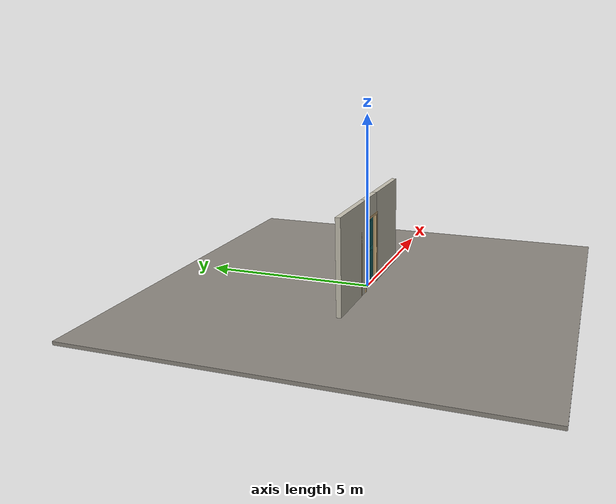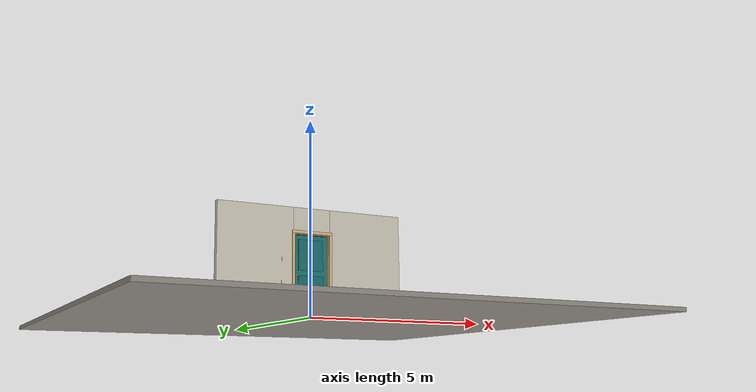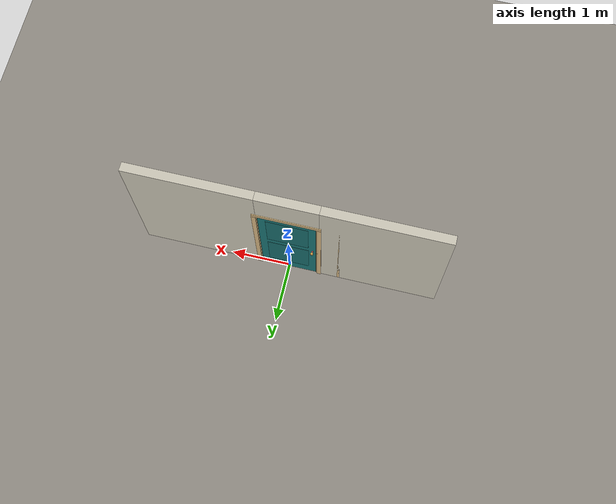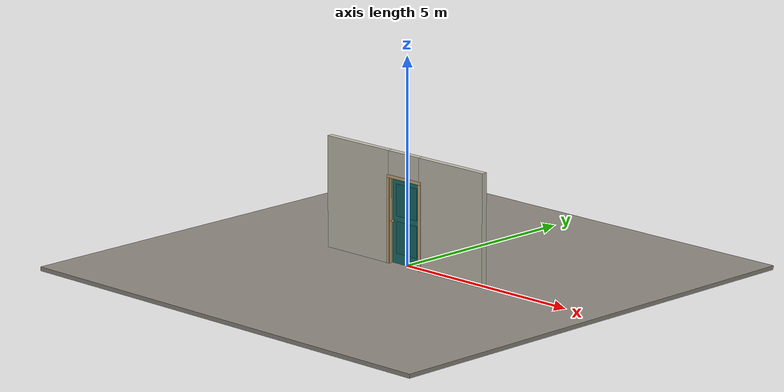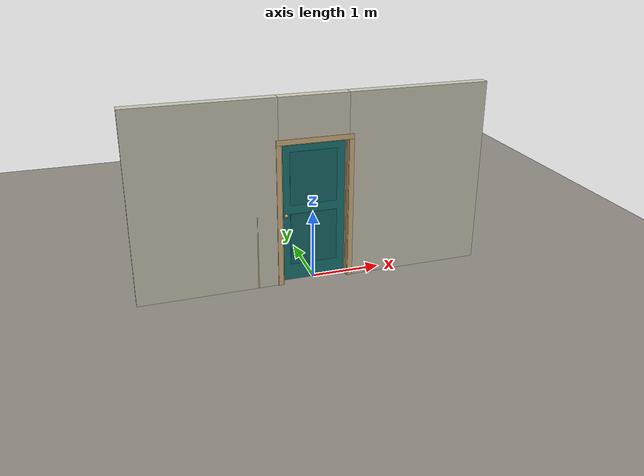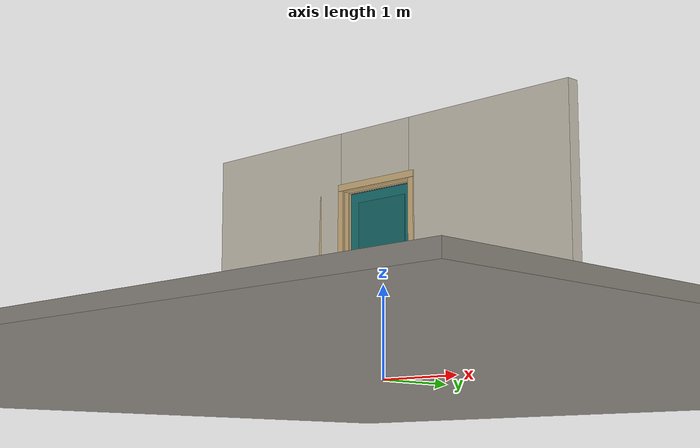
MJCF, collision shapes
<?xml version="1.0" ?>
<mujoco model="db0815_swing_single_full">
  <compiler angle="radian" meshdir="../../hardware" texturedir="../../textures" autolimits="true" inertiafromgeom="false"/>
  <option timestep="0.002" integrator="implicitfast" cone="elliptic" impratio="10" noslip_iterations="3">
    <flag multiccd="enable"/>
  </option>
  <size memory="16M"/>
  <default>
    <geom condim="4" solref="0.005 1" solimp="0.95 0.99 0.001"/>
    <joint solreflimit="0.005 1" solimplimit="0.95 0.99 0.001"/>
    <tendon solreflimit="0.005 1"/>
    <equality solref="0.002 1"/>
  </default>
  <visual>
    <headlight ambient="0.4 0.4 0.4" diffuse="0.7 0.7 0.7" specular="0.2 0.2 0.2"/>
    <quality shadowsize="4096"/>
    <map znear="0.01" zfar="60"/>
  </visual>
  <asset>
    <mesh name="hinge_e22b26c0c1" file="hinge_e22b26c0c1.obj"/>
    <mesh name="hinge_jamb_e1d088f8dc" file="hinge_jamb_e1d088f8dc.obj"/>
    <mesh name="knob_d1888f6f03" file="knob_d1888f6f03.obj"/>
    <mesh name="peephole_f829311a59" file="peephole_f829311a59.obj"/>
    <material name="mat_floor" rgba="0.55 0.53 0.5 1" specular="0.2" shininess="0.15" reflectance="0"/>
    <material name="mat_wall" rgba="0.78 0.76 0.7 1" specular="0.2" shininess="0.1" reflectance="0"/>
    <material name="mat_leaf" rgba="0.1 0.45 0.45 1" specular="0.2" shininess="0.65" reflectance="0"/>
    <material name="mat_leaf_panel" rgba="0.092 0.414 0.414 1" specular="0.2" shininess="0.65" reflectance="0"/>
    <material name="mat_hinge" rgba="0.65 0.66 0.68 1" specular="0.74" shininess="0.5" reflectance="0.36"/>
    <material name="mat_op_brass" rgba="0.85 0.66 0.3 1" specular="0.8" shininess="0.75" reflectance="0.4"/>
    <material name="mat_trim" rgba="0.85 0.66 0.3 1" specular="0.8" shininess="0.75" reflectance="0.4"/>
    <material name="mat_keyway" rgba="0.05 0.05 0.05 1" specular="0.2" shininess="0.5" reflectance="0"/>
    <material name="mat_bolt" rgba="0.75 0.76 0.77 1" specular="0.8" shininess="0.65" reflectance="0.4"/>
    <material name="mat_frame" rgba="0.82 0.7 0.5 1" specular="0.2" shininess="0.45" reflectance="0"/>
    <material name="mat_seal" rgba="0.1 0.1 0.1 1" specular="0.2" shininess="0.1" reflectance="0"/>
    <material name="mat_peephole" rgba="0.85 0.66 0.3 1" specular="0.8" shininess="0.75" reflectance="0.4"/>
    <material name="mat_drip" rgba="0.8 0.81 0.83 1" specular="0.8" shininess="0.6" reflectance="0.4"/>
    <material name="mat_sidelite" rgba="0.85 0.92 0.95 0.25" specular="0.2" shininess="0.95" reflectance="0.1"/>
    <texture name="skybox" type="skybox" builtin="gradient" rgb1="0.6 0.7 0.85" rgb2="0.9 0.92 0.95" width="256" height="256"/>
  </asset>
  <worldbody>
    <light name="sun" pos="1.5 -2.5 4" dir="-0.3 0.5 -0.8" directional="true" diffuse="0.8 0.8 0.8" specular="0.3 0.3 0.3" castshadow="true"/>
    <light name="fill" pos="-1.5 2.5 3" dir="0.3 -0.5 -0.7" directional="true" diffuse="0.35 0.35 0.4" castshadow="false"/>
    <camera name="robot_view" pos="0 -2.585687 1.734312" xyaxes="1 0 0 0 0.26963 0.962964" fovy="52"/>
    <camera name="far_view" pos="0 2.498687 1.734312" xyaxes="-1 0 0 0 -0.26963 0.962964" fovy="52"/>
    <camera name="iso" pos="-1.932062 -2.178937 2.141063" xyaxes="0.741536 -0.670913 0 0.242917 0.268487 0.932151" fovy="46"/>
    <camera name="detail_handle" pos="-0.2215 -0.8685 1.296" xyaxes="0.97561 0.219512 0 -0.070934 0.315262 0.94635" fovy="38"/>
    <geom name="floor" type="box" size="6 6 0.05" pos="0 0 -0.05" material="mat_floor" group="0" contype="1" conaffinity="1" friction="0.8 0.005 0.0001" density="2400"/>
    <geom name="wall_left" type="box" size="0.99525 0.0725 1.35" pos="-1.50475 -0.0435 1.35" material="mat_wall" group="0" contype="1" conaffinity="1" friction="0.6 0.005 0.0001" density="800"/>
    <geom name="wall_right" type="box" size="1.01025 0.0725 1.35" pos="1.48975 -0.0435 1.35" material="mat_wall" group="0" contype="1" conaffinity="1" friction="0.6 0.005 0.0001" density="800"/>
    <geom name="wall_header" type="box" size="0.4945 0.0725 0.303" pos="-0.015 -0.0435 2.397" material="mat_wall" group="0" contype="1" conaffinity="1" friction="0.6 0.005 0.0001" density="800"/>
    <geom name="hinge_0_jamb" type="mesh" mesh="hinge_jamb_e1d088f8dc" pos="0.4575 0.029 0.259" quat="0 0 0 1" material="mat_hinge" group="1" contype="0" conaffinity="0" density="7850"/>
    <geom name="hinge_1_jamb" type="mesh" mesh="hinge_jamb_e1d088f8dc" pos="0.4575 0.029 1.025" quat="0 0 0 1" material="mat_hinge" group="1" contype="0" conaffinity="0" density="7850"/>
    <geom name="hinge_2_jamb" type="mesh" mesh="hinge_jamb_e1d088f8dc" pos="0.4575 0.029 1.861" quat="0 0 0 1" material="mat_hinge" group="1" contype="0" conaffinity="0" density="7850"/>
    <geom name="jamb_hinge" type="box" size="0.0095 0.0725 1.0225" pos="0.47 -0.0435 1.0225" material="mat_frame" group="0" contype="1" conaffinity="1" friction="0.6 0.005 0.0001" density="400"/>
    <geom name="strike_1016_wall_n" type="box" size="0.0245 0.05475 0.015" pos="-0.485 -0.06125 1.016" material="mat_frame" group="0" contype="1" conaffinity="1" friction="0.6 0.005 0.0001" density="400"/>
    <geom name="strike_1016_wall_p" type="box" size="0.0245 0.008 0.015" pos="-0.485 0.0145 1.016" material="mat_frame" group="0" contype="1" conaffinity="1" friction="0.6 0.005 0.0001" density="400"/>
    <geom name="strike_1016_ramp" type="box" size="0.0245 0.016771 0.015" pos="-0.489913 0.026543 1.016" quat="0.973249 0 0 0.229753" material="mat_frame" group="0" contype="1" conaffinity="1" friction="0.12 0.005 0.0001" density="400"/>
    <geom name="strike_1016_back" type="box" size="0.0155 0.0065 0.015" pos="-0.494 0 1.016" material="mat_frame" group="0" contype="1" conaffinity="1" friction="0.6 0.005 0.0001" density="400"/>
    <geom name="jamb_strike_0" type="box" size="0.0245 0.0725 0.5005" pos="-0.485 -0.0435 0.5005" material="mat_frame" group="0" contype="1" conaffinity="1" friction="0.6 0.005 0.0001" density="400"/>
    <geom name="jamb_strike_1" type="box" size="0.0245 0.0725 0.507" pos="-0.485 -0.0435 1.538" material="mat_frame" group="0" contype="1" conaffinity="1" friction="0.6 0.005 0.0001" density="400"/>
    <geom name="jamb_head" type="box" size="0.4945 0.0725 0.0095" pos="-0.015 -0.0435 2.0545" material="mat_frame" group="0" contype="1" conaffinity="1" friction="0.6 0.005 0.0001" density="400"/>
    <geom name="head_stud" type="box" size="0.4945 0.0725 0.015" pos="-0.015 -0.0435 2.079" material="mat_wall" group="0" contype="1" conaffinity="1" friction="0.6 0.005 0.0001" density="500"/>
    <geom name="stop_hinge" type="box" size="0.0055 0.016 1.0225" pos="0.455 -0.0385 1.0225" material="mat_frame" group="0" contype="1" conaffinity="1" friction="0.6 0.005 0.0001" density="400"/>
    <geom name="stop_strike" type="box" size="0.0055 0.016 1.0225" pos="-0.455 -0.0385 1.0225" material="mat_frame" group="0" contype="1" conaffinity="1" friction="0.6 0.005 0.0001" density="400"/>
    <geom name="stop_head" type="box" size="0.4605 0.016 0.0055" pos="0 -0.0385 2.0395" material="mat_frame" group="0" contype="1" conaffinity="1" friction="0.6 0.005 0.0001" density="400"/>
    <geom name="seal_hinge" type="box" size="0.004 0.002 1.0225" pos="0.4575 -0.024 1.0225" material="mat_seal" group="1" contype="0" conaffinity="0" density="1100"/>
    <geom name="seal_strike" type="box" size="0.004 0.002 1.0225" pos="-0.4575 -0.024 1.0225" material="mat_seal" group="1" contype="0" conaffinity="0" density="1100"/>
    <geom name="seal_head" type="box" size="0.4405 0.002 0.008" pos="0 -0.024 2.033" material="mat_seal" group="1" contype="0" conaffinity="0" density="1100"/>
    <geom name="casing_l_n" type="box" size="0.035 0.008 1.032" pos="-0.5095 -0.124 1.0225" material="mat_frame" group="2" contype="0" conaffinity="0" density="400"/>
    <geom name="casing_r_n" type="box" size="0.035 0.008 1.032" pos="0.5095 -0.124 1.0225" material="mat_frame" group="2" contype="0" conaffinity="0" density="400"/>
    <geom name="casing_h_n" type="box" size="0.5445 0.008 0.035" pos="0 -0.124 2.094" material="mat_frame" group="2" contype="0" conaffinity="0" density="400"/>
    <geom name="casing_l_p" type="box" size="0.035 0.008 1.032" pos="-0.5095 0.037 1.0225" material="mat_frame" group="2" contype="0" conaffinity="0" density="400"/>
    <geom name="casing_r_p" type="box" size="0.035 0.008 1.032" pos="0.5095 0.037 1.0225" material="mat_frame" group="2" contype="0" conaffinity="0" density="400"/>
    <geom name="casing_h_p" type="box" size="0.5445 0.008 0.035" pos="0 0.037 2.094" material="mat_frame" group="2" contype="0" conaffinity="0" density="400"/>
    <geom name="weather_drip_cap" type="box" size="0.5105 0.03 0.008" pos="0 -0.03 2.09" material="mat_drip" group="2" contype="0" conaffinity="0" density="2700"/>
    <geom name="weather_drip_cap_bracket" type="box" size="0.15315 0.015 0.005" pos="0 0.0145 2.09" material="mat_drip" group="2" contype="0" conaffinity="0" density="7850"/>
    <geom name="sidelite_glass" type="box" size="0.15 0.003 0.9725" pos="-0.6705 0 1.0225" material="mat_sidelite" group="0" contype="1" conaffinity="1" friction="0.6 0.005 0.0001" density="2500"/>
    <geom name="sidelite_frame" type="box" size="0.02 0.0725 1.0225" pos="-0.8405 -0.0435 1.0225" material="mat_frame" group="0" contype="1" conaffinity="1" friction="0.6 0.005 0.0001" density="600"/>
    <site name="approach_point" pos="0 -1.5 0" quat="1 0 0 0" size="0.05" rgba="0.2 0.9 0.2 0.5" group="4"/>
    <site name="goal_point" pos="0 1.5 0" quat="1 0 0 0" size="0.05" rgba="0.2 0.9 0.2 0.5" group="4"/>
    <site name="door_plane_center" pos="0 0 1.0225" quat="1 0 0 0" size="0.02" rgba="0.2 0.9 0.2 0.5" group="4"/>
    <body name="leaf" pos="0.4605 0 0">
      <inertial pos="-0.445037 0.00057 1.02625" mass="22.407064" quat="0.499417 0.501201 -0.498797 0.500581" diaginertia="1.662596844 7.770054611 9.424849835"/>
      <joint name="leaf_hinge" type="hinge" axis="0 0 -1" pos="-0.003 0.029 0" limited="true" range="0 2.356194" solreflimit="0.02 1" damping="0.30611" frictionloss="0.780347" armature="0.02"/>
      <geom name="leaf_slab" type="box" size="0.457 0.022 1.016" pos="-0.46 0 1.025" material="mat_leaf" group="0" contype="1" conaffinity="1" friction="0.4 0.005 0.0001" density="1"/>
      <geom name="leaf_panel_0_n" type="box" size="0.33646 0.003 0.38422" pos="-0.46 -0.025 0.63674" material="mat_leaf_panel" group="1" contype="0" conaffinity="0" density="1"/>
      <geom name="leaf_panel_0_p" type="box" size="0.33646 0.003 0.38422" pos="-0.46 0.025 0.63674" material="mat_leaf_panel" group="1" contype="0" conaffinity="0" density="1"/>
      <geom name="leaf_panel_1_n" type="box" size="0.33646 0.003 0.38422" pos="-0.46 -0.025 1.53518" material="mat_leaf_panel" group="1" contype="0" conaffinity="0" density="1"/>
      <geom name="leaf_panel_1_p" type="box" size="0.33646 0.003 0.38422" pos="-0.46 0.025 1.53518" material="mat_leaf_panel" group="1" contype="0" conaffinity="0" density="1"/>
      <geom name="hinge_0" type="mesh" mesh="hinge_e22b26c0c1" pos="-0.003 0.029 0.259" quat="0 0 0 1" material="mat_hinge" group="1" contype="0" conaffinity="0" density="7850"/>
      <geom name="hinge_1" type="mesh" mesh="hinge_e22b26c0c1" pos="-0.003 0.029 1.025" quat="0 0 0 1" material="mat_hinge" group="1" contype="0" conaffinity="0" density="7850"/>
      <geom name="hinge_2" type="mesh" mesh="hinge_e22b26c0c1" pos="-0.003 0.029 1.861" quat="0 0 0 1" material="mat_hinge" group="1" contype="0" conaffinity="0" density="7850"/>
      <geom name="leaf_latch_bolt_faceplate" type="box" size="0.0006 0.011 0.025" pos="-0.9164 0 1.016" material="mat_bolt" group="1" contype="0" conaffinity="0" density="8500"/>
      <geom name="peephole" type="mesh" mesh="peephole_f829311a59" pos="-0.46 -0.022 1.509" quat="0 0 -0.707107 0.707107" material="mat_peephole" group="2" contype="0" conaffinity="0" density="8500"/>
      <site name="leaf_edge_mid" pos="-0.917 0 1.016" quat="1 0 0 0" size="0.02" rgba="0.2 0.9 0.2 0.5" group="4"/>
      <body name="leaf_handle" pos="-0.862 0 1.016">
        <inertial pos="0 -0.000049 0" mass="1.16269" quat="0.5 0.5 0.5 0.5" diaginertia="0.000312763 0.00435664 0.004356644"/>
        <joint name="leaf_handle_hinge" type="hinge" axis="0 1 0" limited="true" range="0 0.87" damping="0.143616" frictionloss="0.038" stiffness="0.5" springref="-0.5" armature="0.01"/>
        <geom name="leaf_handle_spindle" type="cylinder" size="0.006 0.03" pos="0 0 0" quat="0.707107 -0.707107 0 0" material="mat_op_brass" group="1" contype="0" conaffinity="0" density="7850"/>
        <geom name="leaf_handle_knob_n" type="mesh" mesh="knob_d1888f6f03" pos="0 -0.022 0" quat="0 0 -0.707107 0.707107" material="mat_op_brass" group="1" contype="0" conaffinity="0" density="3000"/>
        <geom name="leaf_handle_knob_col_n" type="sphere" size="0.0243" pos="0 -0.0685 0" material="mat_op_brass" group="0" contype="1" conaffinity="1" friction="0.9 0.01 0.0001" density="3000"/>
        <geom name="leaf_handle_knob_neck_n" type="cylinder" size="0.011 0.012" pos="0 -0.034 0" quat="0.707107 -0.707107 0 0" material="mat_op_brass" group="3" contype="1" conaffinity="1" rgba="0.8 0.3 0.3 0.25" friction="0.6 0.005 0.0001" density="3000"/>
        <geom name="leaf_handle_turn_button_n" type="cylinder" size="0.005 0.005" pos="0 -0.0941 0" quat="0.707107 -0.707107 0 0" material="mat_trim" group="1" contype="0" conaffinity="0" density="7100"/>
        <geom name="leaf_handle_knob_p" type="mesh" mesh="knob_d1888f6f03" pos="0 0.022 0" quat="0 0 0.707107 0.707107" material="mat_op_brass" group="1" contype="0" conaffinity="0" density="3000"/>
        <geom name="leaf_handle_knob_col_p" type="sphere" size="0.0243" pos="0 0.0685 0" material="mat_op_brass" group="0" contype="1" conaffinity="1" friction="0.9 0.01 0.0001" density="3000"/>
        <geom name="leaf_handle_knob_neck_p" type="cylinder" size="0.011 0.012" pos="0 0.034 0" quat="0.707107 -0.707107 0 0" material="mat_op_brass" group="3" contype="1" conaffinity="1" rgba="0.8 0.3 0.3 0.25" friction="0.6 0.005 0.0001" density="3000"/>
        <geom name="leaf_handle_cylinder_p" type="cylinder" size="0.0085 0.0015" pos="0 0.0906 0" quat="0.707107 -0.707107 0 0" material="mat_trim" group="1" contype="0" conaffinity="0" density="7100"/>
        <geom name="leaf_handle_keyway_p" type="box" size="0.0012 0.0008 0.006" pos="0 0.0926 0" material="mat_keyway" group="1" contype="0" conaffinity="0" density="7100"/>
        <site name="leaf_handle_grip_n" pos="0 -0.0685 0" quat="1 0 0 0" size="0.012" rgba="0.2 0.9 0.2 0.5" group="4"/>
        <site name="leaf_handle_grip_p" pos="0 0.0685 0" quat="1 0 0 0" size="0.012" rgba="0.2 0.9 0.2 0.5" group="4"/>
      </body>
      <body name="leaf_latch_bolt" pos="-0.917 0 1.016">
        <inertial pos="0.008 0 0" mass="0.027149" quat="0 0 -0.707107 0.707107" diaginertia="0.000000328 0.000003943 0.000003943"/>
        <joint name="leaf_latch_bolt_slide" type="slide" axis="1 0 0" limited="true" range="0 0.014" damping="2" frictionloss="0.3" stiffness="400" springref="-0.01" armature="0.1"/>
        <geom name="leaf_latch_bolt_capsule" type="capsule" size="0.005 0.017" pos="0.008 0 0" quat="0.707107 0 -0.707107 0" material="mat_bolt" group="0" contype="1" conaffinity="1" friction="0.2 0.005 0.0001" density="8500"/>
      </body>
    </body>
  </worldbody>
  <tendon>
    <fixed name="leaf_latch_bolt_coupling" limited="true" range="0 10">
      <joint joint="leaf_latch_bolt_slide" coef="1"/>
      <joint joint="leaf_handle_hinge" coef="-0.017284"/>
    </fixed>
  </tendon>
  <sensor>
    <jointpos name="leaf_hinge_pos" joint="leaf_hinge"/>
    <jointvel name="leaf_hinge_vel" joint="leaf_hinge"/>
    <jointpos name="leaf_handle_hinge_pos" joint="leaf_handle_hinge"/>
    <jointvel name="leaf_handle_hinge_vel" joint="leaf_handle_hinge"/>
    <jointpos name="leaf_latch_bolt_slide_pos" joint="leaf_latch_bolt_slide"/>
    <jointvel name="leaf_latch_bolt_slide_vel" joint="leaf_latch_bolt_slide"/>
  </sensor>
</mujoco>
